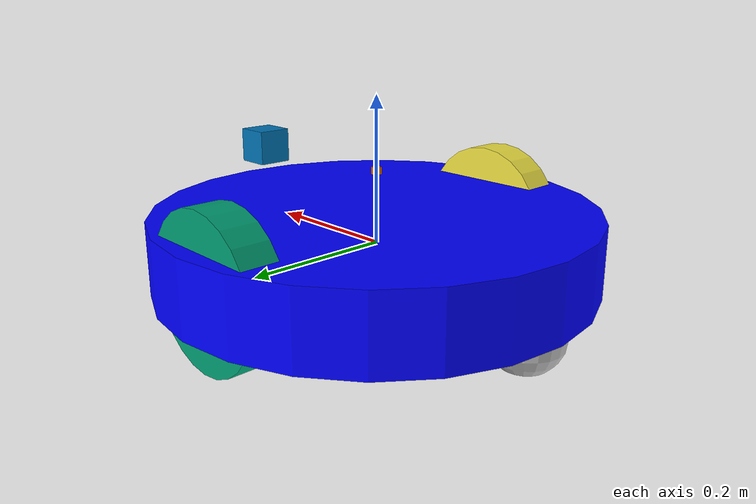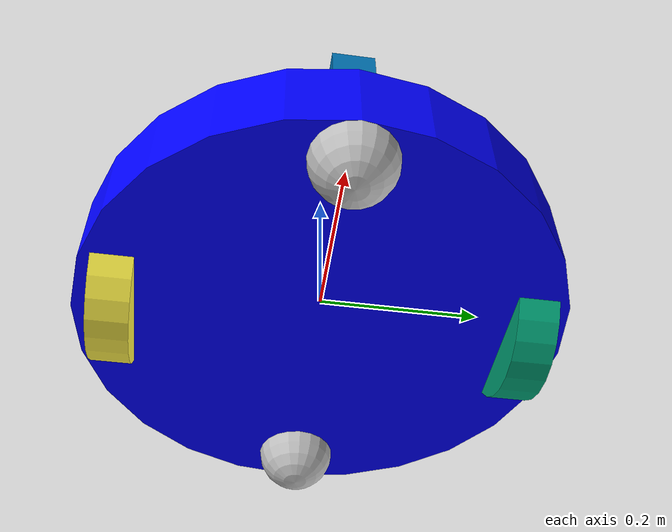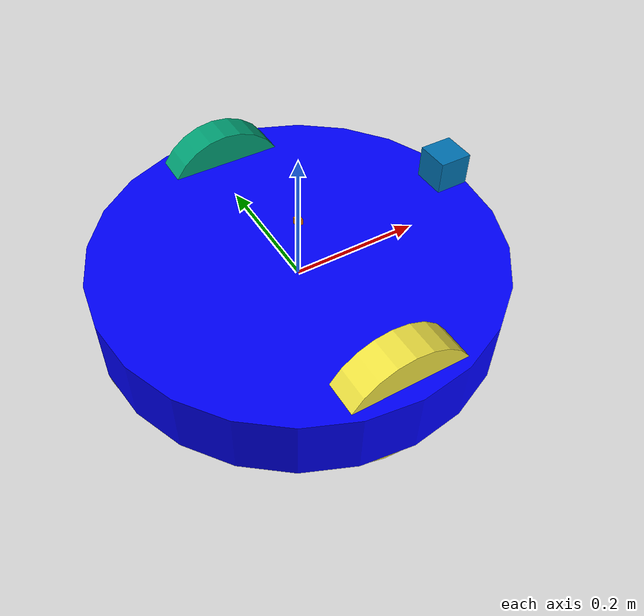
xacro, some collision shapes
<?xml version='1.0'?>

<robot name="my_robot" xmlns:xacro="http://www.ros.org/wiki/xacro">

  <xacro:include filename="$(find my_robot)/urdf/my_robot.gazebo" />

  <material name="blue">
    <color rgba= "0 0 1 1"/>
  </material>
  <material name="grey">
    <color rgba="0.75 0.75 0.75 1"/>
  </material>
  <gazebo reference="chassis">
    <material>Gazebo/Orange</material>
  </gazebo>

  <gazebo reference="camera">
    <material>Gazebo/Red</material>
  </gazebo>

  <!-- robot model -->

  <link name="robot_footprint"></link>

  <joint name="robot_footprint_joint" type="fixed">
    <origin xyz="0 0 0" rpy="0 0 0" />
    <parent link="robot_footprint"/>
    <child link="chassis" />
  </joint>

  <link name='chassis'>
    <pose>0 0 0.1 0 0 0</pose>

    <inertial>
      <mass value="15.0"/>
      <origin xyz="0.0 0 0" rpy=" 0 0 0"/>
      <inertia
          ixx="0.1" ixy="0" ixz="0"
          iyy="0.1" iyz="0"
          izz="0.1"
      />
    </inertial>

    <collision name='collision'>
      <origin xyz="0 0 0" rpy=" 0 0 0"/>
      <geometry>
        <cylinder radius="0.3" length="0.1"/>
      </geometry>
    </collision>

    <visual name='chassis_visual'>
      <origin xyz="0 0 0" rpy=" 0 0 0"/>
      <geometry>
        <cylinder radius="0.3" length="0.1"/>
      </geometry>
      <material name="blue"/>
    </visual>

    <collision name='back_caster_collision'>
      <origin xyz="-0.25 0 -0.05" rpy=" 0 0 0"/>
      <geometry>
        <sphere radius="0.0499"/>
      </geometry>
    </collision>

    <visual name='back_caster_visual'>
      <origin xyz="-0.25 0 -0.05" rpy=" 0 0 0"/>
      <geometry>
        <sphere radius="0.05"/>
      </geometry>
      <material name="grey"/>
    </visual>

    <collision name='front_caster_collision'>
      <origin xyz="0.25 0 -0.05" rpy=" 0 0 0"/>
      <geometry>
        <sphere radius="0.0499"/>
      </geometry>
    </collision>

    <visual name='front_caster_visual'>
      <origin xyz="0.25 0 -0.05" rpy=" 0 0 0"/>
      <geometry>
        <sphere radius="0.05"/>
      </geometry>
      <material name="grey"/>
    </visual>

  </link>

  <link name='left_wheel'>

    <inertial>
      <mass value="5.0"/>
      <origin xyz="0.0 0 0" rpy=" 0 1.5707 1.5707"/>
      <inertia
          ixx="0.1" ixy="0" ixz="0"
          iyy="0.1" iyz="0"
          izz="0.1"
      />
    </inertial>

    <collision name='left_w_collision'>
      <origin xyz="0 0 0" rpy=" 0 1.5707 1.5707"/>
      <geometry>
        <cylinder radius="0.1" length="0.05"/>
      </geometry>
    </collision>

    <visual name='left_w_visual'>
      <origin xyz="0 0 0" rpy=" 0 1.5707 1.5707"/>
      <geometry>
        <cylinder radius="0.1" length="0.05"/>
      </geometry>
    </visual>
  </link>

  <link name='right_wheel'>

    <inertial>
      <mass value="5.0"/>
      <origin xyz="0.0 0 0" rpy=" 0 1.5707 1.5707"/>
      <inertia
          ixx="0.1" ixy="0" ixz="0"
          iyy="0.1" iyz="0"
          izz="0.1"
      />
    </inertial>

    <collision name='right_w_collision'>
      <origin xyz="0 0 0" rpy=" 0 1.5707 1.5707"/>
      <geometry>
        <cylinder radius="0.1" length="0.05"/>
      </geometry>
    </collision>

    <visual name='right_w_visual'>
      <origin xyz="0 0 0" rpy=" 0 1.5707 1.5707"/>
      <geometry>
        <cylinder radius="0.1" length="0.05"/>
      </geometry>
    </visual>
  </link>

  <joint type="continuous" name="left_wheel_hinge">
    <origin xyz="0 0.25 0" rpy="0 0 0"/>
    <child link="left_wheel"/>
    <parent link="chassis"/>
    <axis xyz="0 1 0" rpy="0 0 0"/>
    <limit effort="10000" velocity="1000"/>
    <dynamics damping="1.0" friction="1.0"/>
  </joint>

  <joint type="continuous" name="right_wheel_hinge">
    <origin xyz="0 -0.25 0" rpy="0 0 0"/>
    <child link="right_wheel"/>
    <parent link="chassis"/>
    <axis xyz="0 1 0" rpy="0 0 0"/>
    <limit effort="10000" velocity="1000"/>
    <dynamics damping="1.0" friction="1.0"/>
  </joint>

  <link name='camera_link'>

    <inertial>
      <mass value="0.1"/>
      <origin xyz="0.0 0 0" rpy=" 0 0 0"/>
      <inertia
          ixx="1e-6" ixy="0" ixz="0"
          iyy="1e-6" iyz="0"
          izz="1e-6"
      />
    </inertial>

    <collision name='camera_collision'>
      <origin xyz="0 0 0" rpy=" 0 0 0"/>
      <geometry>
        <box size="0.05 0.05 0.05"/>
      </geometry>
    </collision>

    <visual name='camera_visual'>
      <origin xyz="0 0 0" rpy=" 0 0 0"/>
      <geometry>
        <box size="0.05 0.05 0.05"/>
      </geometry>
    </visual>

    <box_inertia sizeX="0.05" sizeY="0.05" sizeZ="0.05" mass="0.1">
      <origin xyz="0 0 0" rpy="0 0 0" />
    </box_inertia>

  </link>

  <joint type="fixed" name="camera_joint">
    <origin xyz="0.25 0 0.1" rpy="0 0 0"/>
    <child link="camera_link"/>
    <parent link="robot_footprint"/>
    <axis xyz="0 1 0" rpy="0 0 0"/>
    <limit effort="10000" velocity="1000"/>
    <dynamics damping="1.0" friction="1.0"/>
  </joint>

  <link name='hokuyo'>

    <inertial>
      <mass value="1e-5"/>
      <origin xyz="0.0 0 0" rpy=" 0 0 0"/>
      <inertia
          ixx="1e-6" ixy="0" ixz="0"
          iyy="1e-6" iyz="0"
          izz="1e-6"
      />
    </inertial>

    <collision name='hokuyo_collision'>
      <origin xyz="0 0 0" rpy=" 0 0 0"/>
      <geometry>
        <box size="0.01 0.01 0.01"/>
      </geometry>
    </collision>

    <visual name='hokuyo_visual'>
      <origin xyz="0 0 0" rpy=" 0 0 0"/>
      <geometry>
        <mesh filename="package://my_robot/meshes/hokuyo.dae"/>
      </geometry>
    </visual>
  </link>

  <joint type="fixed" name="hokuyo_joint">
    <origin xyz="0.0 0 0.1" rpy="0 0 0"/>
    <child link="hokuyo"/>
    <parent link="chassis"/>
    <axis xyz="0 1 0" rpy="0 0 0"/>
  </joint>

  <joint name="camera_optical_joint" type="fixed">
    <origin xyz="0 0 0" rpy="-1.5707 0 -1.5707"/>
    <parent link="camera_link"/>
    <child link="camera_link_optical"/>
  </joint>

  <link name="camera_link_optical">
  </link>

</robot>
